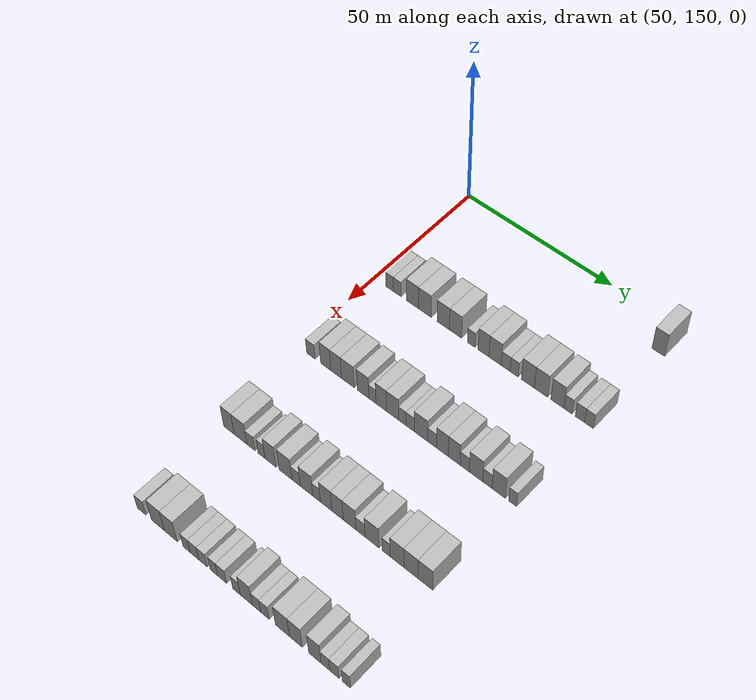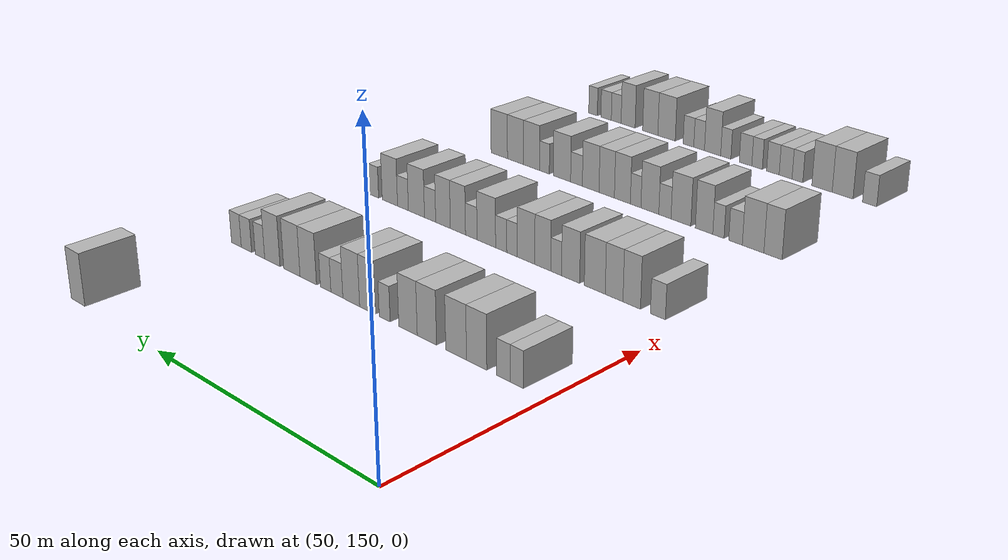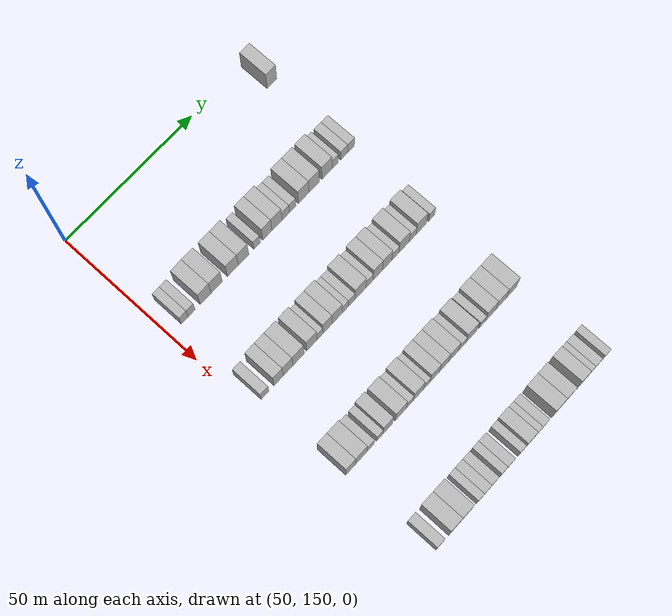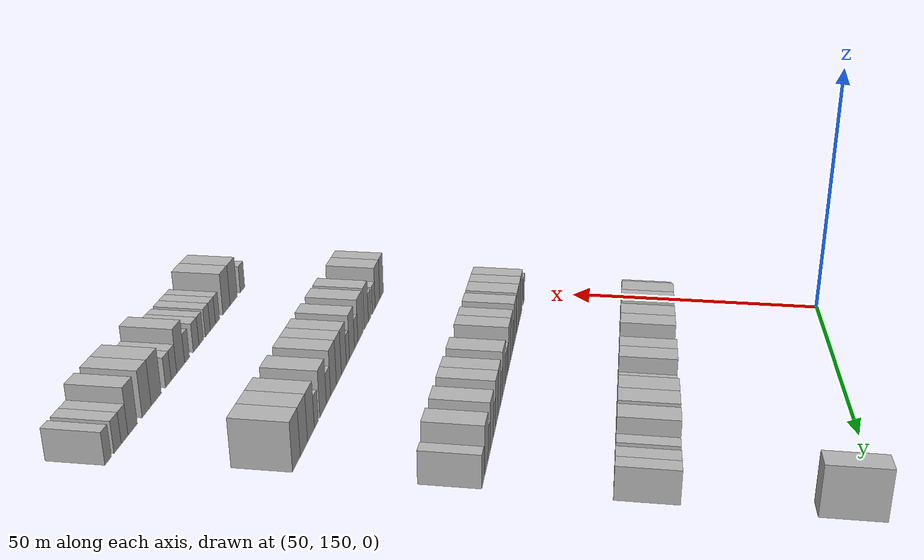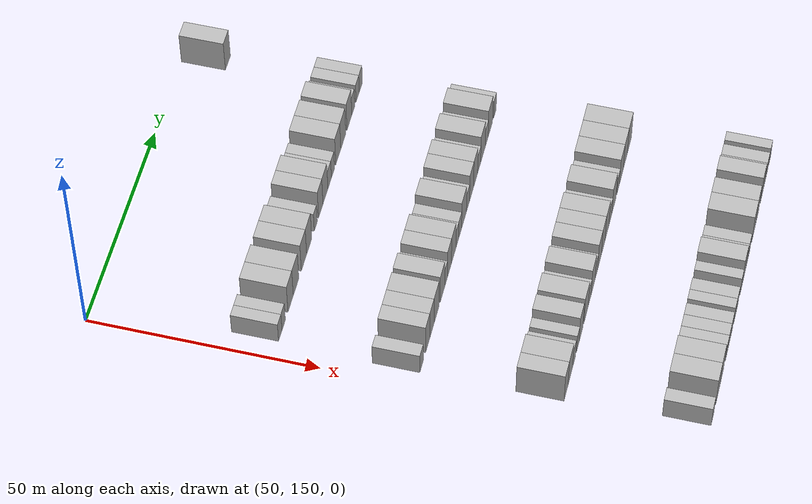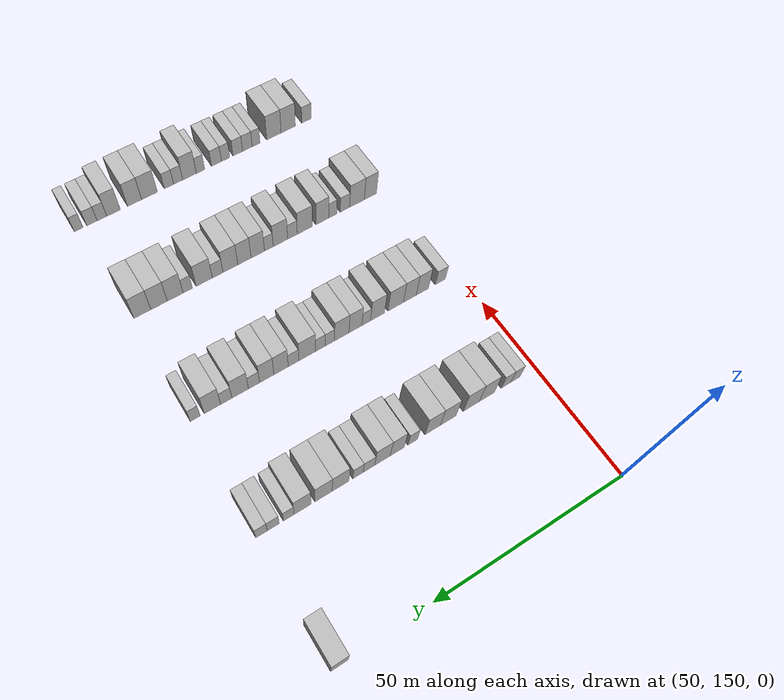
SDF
<sdf version="1.6">
 <world name="default">
  <model name="building_400">
   <static>1</static>
   <pose>55.0000 222.2956 0 0.000000 0.000000 0.000000</pose>
   <link name="link">
    <pose>0 0 4.50 0 0 0</pose>
    <collision name="collision"><geometry><box><size>10.0000 4.0230 9.0000</size></box></geometry></collision>
    <visual name="visual">
     <cast_shadows>0</cast_shadows>
     <geometry><box><size>10.0000 4.0230 9.0000</size></box></geometry>
     <material>
      <script>
       <uri>model://HANNAS_wall/materials/scripts</uri>
       <uri>model://HANNAS_wall/materials/textures</uri>
       <name>vrc/HANNAS_wall</name>
      </script>
     </material>
    </visual>
   </link>
  </model>
  <model name="building_618">
   <static>1</static>
   <pose>85.0000 155.6986 0 0.000000 0.000000 0.000000</pose>
   <link name="link">
    <pose>0 0 3.00 0 0 0</pose>
    <collision name="collision"><geometry><box><size>10.0000 2.6749 6.0000</size></box></geometry></collision>
    <visual name="visual">
     <cast_shadows>0</cast_shadows>
     <geometry><box><size>10.0000 2.6749 6.0000</size></box></geometry>
     <material>
      <script>
       <uri>model://HANNAS_wall/materials/scripts</uri>
       <uri>model://HANNAS_wall/materials/textures</uri>
       <name>vrc/HANNAS_wall</name>
      </script>
     </material>
    </visual>
   </link>
  </model>
  <model name="building_619">
   <static>1</static>
   <pose>85.0000 158.3963 0 0.000000 0.000000 0.000000</pose>
   <link name="link">
    <pose>0 0 3.00 0 0 0</pose>
    <collision name="collision"><geometry><box><size>10.0000 2.7205 6.0000</size></box></geometry></collision>
    <visual name="visual">
     <cast_shadows>0</cast_shadows>
     <geometry><box><size>10.0000 2.7205 6.0000</size></box></geometry>
     <material>
      <script>
       <uri>model://HANNAS_wall/materials/scripts</uri>
       <uri>model://HANNAS_wall/materials/textures</uri>
       <name>vrc/HANNAS_wall</name>
      </script>
     </material>
    </visual>
   </link>
  </model>
  <model name="building_620">
   <static>1</static>
   <pose>85.0000 163.8705 0 0.000000 0.000000 0.000000</pose>
   <link name="link">
    <pose>0 0 4.50 0 0 0</pose>
    <collision name="collision"><geometry><box><size>10.0000 4.2278 9.0000</size></box></geometry></collision>
    <visual name="visual">
     <cast_shadows>0</cast_shadows>
     <geometry><box><size>10.0000 4.2278 9.0000</size></box></geometry>
     <material>
      <script>
       <uri>model://HANNAS_wall/materials/scripts</uri>
       <uri>model://HANNAS_wall/materials/textures</uri>
       <name>vrc/HANNAS_wall</name>
      </script>
     </material>
    </visual>
   </link>
  </model>
  <model name="building_621">
   <static>1</static>
   <pose>85.0000 168.2015 0 0.000000 0.000000 0.000000</pose>
   <link name="link">
    <pose>0 0 4.50 0 0 0</pose>
    <collision name="collision"><geometry><box><size>10.0000 4.4344 9.0000</size></box></geometry></collision>
    <visual name="visual">
     <cast_shadows>0</cast_shadows>
     <geometry><box><size>10.0000 4.4344 9.0000</size></box></geometry>
     <material>
      <script>
       <uri>model://HANNAS_wall/materials/scripts</uri>
       <uri>model://HANNAS_wall/materials/textures</uri>
       <name>vrc/HANNAS_wall</name>
      </script>
     </material>
    </visual>
   </link>
  </model>
  <model name="building_622">
   <static>1</static>
   <pose>85.0000 174.5617 0 0.000000 0.000000 0.000000</pose>
   <link name="link">
    <pose>0 0 4.50 0 0 0</pose>
    <collision name="collision"><geometry><box><size>10.0000 4.2861 9.0000</size></box></geometry></collision>
    <visual name="visual">
     <cast_shadows>0</cast_shadows>
     <geometry><box><size>10.0000 4.2861 9.0000</size></box></geometry>
     <material>
      <script>
       <uri>model://HANNAS_wall/materials/scripts</uri>
       <uri>model://HANNAS_wall/materials/textures</uri>
       <name>vrc/HANNAS_wall</name>
      </script>
     </material>
    </visual>
   </link>
  </model>
  <model name="building_623">
   <static>1</static>
   <pose>85.0000 178.7982 0 0.000000 0.000000 0.000000</pose>
   <link name="link">
    <pose>0 0 4.50 0 0 0</pose>
    <collision name="collision"><geometry><box><size>10.0000 4.1868 9.0000</size></box></geometry></collision>
    <visual name="visual">
     <cast_shadows>0</cast_shadows>
     <geometry><box><size>10.0000 4.1868 9.0000</size></box></geometry>
     <material>
      <script>
       <uri>model://HANNAS_wall/materials/scripts</uri>
       <uri>model://HANNAS_wall/materials/textures</uri>
       <name>vrc/HANNAS_wall</name>
      </script>
     </material>
    </visual>
   </link>
  </model>
  <model name="building_624">
   <static>1</static>
   <pose>85.0000 184.1627 0 0.000000 0.000000 0.000000</pose>
   <link name="link">
    <pose>0 0 3.00 0 0 0</pose>
    <collision name="collision"><geometry><box><size>10.0000 2.5423 6.0000</size></box></geometry></collision>
    <visual name="visual">
     <cast_shadows>0</cast_shadows>
     <geometry><box><size>10.0000 2.5423 6.0000</size></box></geometry>
     <material>
      <script>
       <uri>model://HANNAS_wall/materials/scripts</uri>
       <uri>model://HANNAS_wall/materials/textures</uri>
       <name>vrc/HANNAS_wall</name>
      </script>
     </material>
    </visual>
   </link>
  </model>
  <model name="building_625">
   <static>1</static>
   <pose>85.0000 188.2737 0 0.000000 0.000000 0.000000</pose>
   <link name="link">
    <pose>0 0 4.50 0 0 0</pose>
    <collision name="collision"><geometry><box><size>10.0000 3.6796 9.0000</size></box></geometry></collision>
    <visual name="visual">
     <cast_shadows>0</cast_shadows>
     <geometry><box><size>10.0000 3.6796 9.0000</size></box></geometry>
     <material>
      <script>
       <uri>model://HANNAS_wall/materials/scripts</uri>
       <uri>model://HANNAS_wall/materials/textures</uri>
       <name>vrc/HANNAS_wall</name>
      </script>
     </material>
    </visual>
   </link>
  </model>
  <model name="building_626">
   <static>1</static>
   <pose>85.0000 192.1626 0 0.000000 0.000000 0.000000</pose>
   <link name="link">
    <pose>0 0 4.50 0 0 0</pose>
    <collision name="collision"><geometry><box><size>10.0000 4.0982 9.0000</size></box></geometry></collision>
    <visual name="visual">
     <cast_shadows>0</cast_shadows>
     <geometry><box><size>10.0000 4.0982 9.0000</size></box></geometry>
     <material>
      <script>
       <uri>model://HANNAS_wall/materials/scripts</uri>
       <uri>model://HANNAS_wall/materials/textures</uri>
       <name>vrc/HANNAS_wall</name>
      </script>
     </material>
    </visual>
   </link>
  </model>
  <model name="building_627">
   <static>1</static>
   <pose>85.0000 195.6975 0 0.000000 0.000000 0.000000</pose>
   <link name="link">
    <pose>0 0 3.00 0 0 0</pose>
    <collision name="collision"><geometry><box><size>10.0000 2.9717 6.0000</size></box></geometry></collision>
    <visual name="visual">
     <cast_shadows>0</cast_shadows>
     <geometry><box><size>10.0000 2.9717 6.0000</size></box></geometry>
     <material>
      <script>
       <uri>model://HANNAS_wall/materials/scripts</uri>
       <uri>model://HANNAS_wall/materials/textures</uri>
       <name>vrc/HANNAS_wall</name>
      </script>
     </material>
    </visual>
   </link>
  </model>
  <model name="building_628">
   <static>1</static>
   <pose>85.0000 198.5113 0 0.000000 0.000000 0.000000</pose>
   <link name="link">
    <pose>0 0 3.00 0 0 0</pose>
    <collision name="collision"><geometry><box><size>10.0000 2.6558 6.0000</size></box></geometry></collision>
    <visual name="visual">
     <cast_shadows>0</cast_shadows>
     <geometry><box><size>10.0000 2.6558 6.0000</size></box></geometry>
     <material>
      <script>
       <uri>model://HANNAS_wall/materials/scripts</uri>
       <uri>model://HANNAS_wall/materials/textures</uri>
       <name>vrc/HANNAS_wall</name>
      </script>
     </material>
    </visual>
   </link>
  </model>
  <model name="building_629">
   <static>1</static>
   <pose>85.0000 202.9677 0 0.000000 0.000000 0.000000</pose>
   <link name="link">
    <pose>0 0 4.50 0 0 0</pose>
    <collision name="collision"><geometry><box><size>10.0000 4.2570 9.0000</size></box></geometry></collision>
    <visual name="visual">
     <cast_shadows>0</cast_shadows>
     <geometry><box><size>10.0000 4.2570 9.0000</size></box></geometry>
     <material>
      <script>
       <uri>model://HANNAS_wall/materials/scripts</uri>
       <uri>model://HANNAS_wall/materials/textures</uri>
       <name>vrc/HANNAS_wall</name>
      </script>
     </material>
    </visual>
   </link>
  </model>
  <model name="building_630">
   <static>1</static>
   <pose>85.0000 207.2489 0 0.000000 0.000000 0.000000</pose>
   <link name="link">
    <pose>0 0 4.50 0 0 0</pose>
    <collision name="collision"><geometry><box><size>10.0000 4.3053 9.0000</size></box></geometry></collision>
    <visual name="visual">
     <cast_shadows>0</cast_shadows>
     <geometry><box><size>10.0000 4.3053 9.0000</size></box></geometry>
     <material>
      <script>
       <uri>model://HANNAS_wall/materials/scripts</uri>
       <uri>model://HANNAS_wall/materials/textures</uri>
       <name>vrc/HANNAS_wall</name>
      </script>
     </material>
    </visual>
   </link>
  </model>
  <model name="building_631">
   <static>1</static>
   <pose>85.0000 212.4844 0 0.000000 0.000000 0.000000</pose>
   <link name="link">
    <pose>0 0 4.50 0 0 0</pose>
    <collision name="collision"><geometry><box><size>10.0000 4.1656 9.0000</size></box></geometry></collision>
    <visual name="visual">
     <cast_shadows>0</cast_shadows>
     <geometry><box><size>10.0000 4.1656 9.0000</size></box></geometry>
     <material>
      <script>
       <uri>model://HANNAS_wall/materials/scripts</uri>
       <uri>model://HANNAS_wall/materials/textures</uri>
       <name>vrc/HANNAS_wall</name>
      </script>
     </material>
    </visual>
   </link>
  </model>
  <model name="building_632">
   <static>1</static>
   <pose>85.0000 215.8729 0 0.000000 0.000000 0.000000</pose>
   <link name="link">
    <pose>0 0 3.00 0 0 0</pose>
    <collision name="collision"><geometry><box><size>10.0000 2.6115 6.0000</size></box></geometry></collision>
    <visual name="visual">
     <cast_shadows>0</cast_shadows>
     <geometry><box><size>10.0000 2.6115 6.0000</size></box></geometry>
     <material>
      <script>
       <uri>model://HANNAS_wall/materials/scripts</uri>
       <uri>model://HANNAS_wall/materials/textures</uri>
       <name>vrc/HANNAS_wall</name>
      </script>
     </material>
    </visual>
   </link>
  </model>
  <model name="building_633">
   <static>1</static>
   <pose>85.0000 219.6330 0 0.000000 0.000000 0.000000</pose>
   <link name="link">
    <pose>0 0 3.00 0 0 0</pose>
    <collision name="collision"><geometry><box><size>10.0000 2.9088 6.0000</size></box></geometry></collision>
    <visual name="visual">
     <cast_shadows>0</cast_shadows>
     <geometry><box><size>10.0000 2.9088 6.0000</size></box></geometry>
     <material>
      <script>
       <uri>model://HANNAS_wall/materials/scripts</uri>
       <uri>model://HANNAS_wall/materials/textures</uri>
       <name>vrc/HANNAS_wall</name>
      </script>
     </material>
    </visual>
   </link>
  </model>
  <model name="building_634">
   <static>1</static>
   <pose>85.0000 222.4779 0 0.000000 0.000000 0.000000</pose>
   <link name="link">
    <pose>0 0 3.00 0 0 0</pose>
    <collision name="collision"><geometry><box><size>10.0000 2.7809 6.0000</size></box></geometry></collision>
    <visual name="visual">
     <cast_shadows>0</cast_shadows>
     <geometry><box><size>10.0000 2.7809 6.0000</size></box></geometry>
     <material>
      <script>
       <uri>model://HANNAS_wall/materials/scripts</uri>
       <uri>model://HANNAS_wall/materials/textures</uri>
       <name>vrc/HANNAS_wall</name>
      </script>
     </material>
    </visual>
   </link>
  </model>
  <model name="building_844">
   <static>1</static>
   <pose>115.0000 155.2185 0 0.000000 0.000000 0.000000</pose>
   <link name="link">
    <pose>0 0 3.00 0 0 0</pose>
    <collision name="collision"><geometry><box><size>10.0000 2.9948 6.0000</size></box></geometry></collision>
    <visual name="visual">
     <cast_shadows>0</cast_shadows>
     <geometry><box><size>10.0000 2.9948 6.0000</size></box></geometry>
     <material>
      <script>
       <uri>model://HANNAS_wall/materials/scripts</uri>
       <uri>model://HANNAS_wall/materials/textures</uri>
       <name>vrc/HANNAS_wall</name>
      </script>
     </material>
    </visual>
   </link>
  </model>
  <model name="building_845">
   <static>1</static>
   <pose>115.0000 160.5203 0 0.000000 0.000000 0.000000</pose>
   <link name="link">
    <pose>0 0 4.50 0 0 0</pose>
    <collision name="collision"><geometry><box><size>10.0000 3.6087 9.0000</size></box></geometry></collision>
    <visual name="visual">
     <cast_shadows>0</cast_shadows>
     <geometry><box><size>10.0000 3.6087 9.0000</size></box></geometry>
     <material>
      <script>
       <uri>model://HANNAS_wall/materials/scripts</uri>
       <uri>model://HANNAS_wall/materials/textures</uri>
       <name>vrc/HANNAS_wall</name>
      </script>
     </material>
    </visual>
   </link>
  </model>
  <model name="building_846">
   <static>1</static>
   <pose>115.0000 164.1859 0 0.000000 0.000000 0.000000</pose>
   <link name="link">
    <pose>0 0 4.50 0 0 0</pose>
    <collision name="collision"><geometry><box><size>10.0000 3.7227 9.0000</size></box></geometry></collision>
    <visual name="visual">
     <cast_shadows>0</cast_shadows>
     <geometry><box><size>10.0000 3.7227 9.0000</size></box></geometry>
     <material>
      <script>
       <uri>model://HANNAS_wall/materials/scripts</uri>
       <uri>model://HANNAS_wall/materials/textures</uri>
       <name>vrc/HANNAS_wall</name>
      </script>
     </material>
    </visual>
   </link>
  </model>
  <model name="building_847">
   <static>1</static>
   <pose>115.0000 168.2815 0 0.000000 0.000000 0.000000</pose>
   <link name="link">
    <pose>0 0 4.50 0 0 0</pose>
    <collision name="collision"><geometry><box><size>10.0000 4.4685 9.0000</size></box></geometry></collision>
    <visual name="visual">
     <cast_shadows>0</cast_shadows>
     <geometry><box><size>10.0000 4.4685 9.0000</size></box></geometry>
     <material>
      <script>
       <uri>model://HANNAS_wall/materials/scripts</uri>
       <uri>model://HANNAS_wall/materials/textures</uri>
       <name>vrc/HANNAS_wall</name>
      </script>
     </material>
    </visual>
   </link>
  </model>
  <model name="building_848">
   <static>1</static>
   <pose>115.0000 173.5145 0 0.000000 0.000000 0.000000</pose>
   <link name="link">
    <pose>0 0 4.50 0 0 0</pose>
    <collision name="collision"><geometry><box><size>10.0000 3.9974 9.0000</size></box></geometry></collision>
    <visual name="visual">
     <cast_shadows>0</cast_shadows>
     <geometry><box><size>10.0000 3.9974 9.0000</size></box></geometry>
     <material>
      <script>
       <uri>model://HANNAS_wall/materials/scripts</uri>
       <uri>model://HANNAS_wall/materials/textures</uri>
       <name>vrc/HANNAS_wall</name>
      </script>
     </material>
    </visual>
   </link>
  </model>
  <model name="building_849">
   <static>1</static>
   <pose>115.0000 176.7215 0 0.000000 0.000000 0.000000</pose>
   <link name="link">
    <pose>0 0 3.00 0 0 0</pose>
    <collision name="collision"><geometry><box><size>10.0000 2.4165 6.0000</size></box></geometry></collision>
    <visual name="visual">
     <cast_shadows>0</cast_shadows>
     <geometry><box><size>10.0000 2.4165 6.0000</size></box></geometry>
     <material>
      <script>
       <uri>model://HANNAS_wall/materials/scripts</uri>
       <uri>model://HANNAS_wall/materials/textures</uri>
       <name>vrc/HANNAS_wall</name>
      </script>
     </material>
    </visual>
   </link>
  </model>
  <model name="building_850">
   <static>1</static>
   <pose>115.0000 179.7391 0 0.000000 0.000000 0.000000</pose>
   <link name="link">
    <pose>0 0 4.50 0 0 0</pose>
    <collision name="collision"><geometry><box><size>10.0000 3.6188 9.0000</size></box></geometry></collision>
    <visual name="visual">
     <cast_shadows>0</cast_shadows>
     <geometry><box><size>10.0000 3.6188 9.0000</size></box></geometry>
     <material>
      <script>
       <uri>model://HANNAS_wall/materials/scripts</uri>
       <uri>model://HANNAS_wall/materials/textures</uri>
       <name>vrc/HANNAS_wall</name>
      </script>
     </material>
    </visual>
   </link>
  </model>
  <model name="building_851">
   <static>1</static>
   <pose>115.0000 183.5796 0 0.000000 0.000000 0.000000</pose>
   <link name="link">
    <pose>0 0 4.50 0 0 0</pose>
    <collision name="collision"><geometry><box><size>10.0000 4.0622 9.0000</size></box></geometry></collision>
    <visual name="visual">
     <cast_shadows>0</cast_shadows>
     <geometry><box><size>10.0000 4.0622 9.0000</size></box></geometry>
     <material>
      <script>
       <uri>model://HANNAS_wall/materials/scripts</uri>
       <uri>model://HANNAS_wall/materials/textures</uri>
       <name>vrc/HANNAS_wall</name>
      </script>
     </material>
    </visual>
   </link>
  </model>
  <model name="building_852">
   <static>1</static>
   <pose>115.0000 186.8452 0 0.000000 0.000000 0.000000</pose>
   <link name="link">
    <pose>0 0 3.00 0 0 0</pose>
    <collision name="collision"><geometry><box><size>10.0000 2.4689 6.0000</size></box></geometry></collision>
    <visual name="visual">
     <cast_shadows>0</cast_shadows>
     <geometry><box><size>10.0000 2.4689 6.0000</size></box></geometry>
     <material>
      <script>
       <uri>model://HANNAS_wall/materials/scripts</uri>
       <uri>model://HANNAS_wall/materials/textures</uri>
       <name>vrc/HANNAS_wall</name>
      </script>
     </material>
    </visual>
   </link>
  </model>
  <model name="building_853">
   <static>1</static>
   <pose>115.0000 189.4153 0 0.000000 0.000000 0.000000</pose>
   <link name="link">
    <pose>0 0 3.00 0 0 0</pose>
    <collision name="collision"><geometry><box><size>10.0000 2.6712 6.0000</size></box></geometry></collision>
    <visual name="visual">
     <cast_shadows>0</cast_shadows>
     <geometry><box><size>10.0000 2.6712 6.0000</size></box></geometry>
     <material>
      <script>
       <uri>model://HANNAS_wall/materials/scripts</uri>
       <uri>model://HANNAS_wall/materials/textures</uri>
       <name>vrc/HANNAS_wall</name>
      </script>
     </material>
    </visual>
   </link>
  </model>
  <model name="building_854">
   <static>1</static>
   <pose>115.0000 192.9995 0 0.000000 0.000000 0.000000</pose>
   <link name="link">
    <pose>0 0 4.50 0 0 0</pose>
    <collision name="collision"><geometry><box><size>10.0000 4.4973 9.0000</size></box></geometry></collision>
    <visual name="visual">
     <cast_shadows>0</cast_shadows>
     <geometry><box><size>10.0000 4.4973 9.0000</size></box></geometry>
     <material>
      <script>
       <uri>model://HANNAS_wall/materials/scripts</uri>
       <uri>model://HANNAS_wall/materials/textures</uri>
       <name>vrc/HANNAS_wall</name>
      </script>
     </material>
    </visual>
   </link>
  </model>
  <model name="building_855">
   <static>1</static>
   <pose>115.0000 196.6840 0 0.000000 0.000000 0.000000</pose>
   <link name="link">
    <pose>0 0 3.00 0 0 0</pose>
    <collision name="collision"><geometry><box><size>10.0000 2.8716 6.0000</size></box></geometry></collision>
    <visual name="visual">
     <cast_shadows>0</cast_shadows>
     <geometry><box><size>10.0000 2.8716 6.0000</size></box></geometry>
     <material>
      <script>
       <uri>model://HANNAS_wall/materials/scripts</uri>
       <uri>model://HANNAS_wall/materials/textures</uri>
       <name>vrc/HANNAS_wall</name>
      </script>
     </material>
    </visual>
   </link>
  </model>
  <model name="building_856">
   <static>1</static>
   <pose>115.0000 200.0212 0 0.000000 0.000000 0.000000</pose>
   <link name="link">
    <pose>0 0 4.50 0 0 0</pose>
    <collision name="collision"><geometry><box><size>10.0000 3.8029 9.0000</size></box></geometry></collision>
    <visual name="visual">
     <cast_shadows>0</cast_shadows>
     <geometry><box><size>10.0000 3.8029 9.0000</size></box></geometry>
     <material>
      <script>
       <uri>model://HANNAS_wall/materials/scripts</uri>
       <uri>model://HANNAS_wall/materials/textures</uri>
       <name>vrc/HANNAS_wall</name>
      </script>
     </material>
    </visual>
   </link>
  </model>
  <model name="building_857">
   <static>1</static>
   <pose>115.0000 203.8051 0 0.000000 0.000000 0.000000</pose>
   <link name="link">
    <pose>0 0 4.50 0 0 0</pose>
    <collision name="collision"><geometry><box><size>10.0000 3.7650 9.0000</size></box></geometry></collision>
    <visual name="visual">
     <cast_shadows>0</cast_shadows>
     <geometry><box><size>10.0000 3.7650 9.0000</size></box></geometry>
     <material>
      <script>
       <uri>model://HANNAS_wall/materials/scripts</uri>
       <uri>model://HANNAS_wall/materials/textures</uri>
       <name>vrc/HANNAS_wall</name>
      </script>
     </material>
    </visual>
   </link>
  </model>
  <model name="building_858">
   <static>1</static>
   <pose>115.0000 207.1430 0 0.000000 0.000000 0.000000</pose>
   <link name="link">
    <pose>0 0 3.00 0 0 0</pose>
    <collision name="collision"><geometry><box><size>10.0000 2.9108 6.0000</size></box></geometry></collision>
    <visual name="visual">
     <cast_shadows>0</cast_shadows>
     <geometry><box><size>10.0000 2.9108 6.0000</size></box></geometry>
     <material>
      <script>
       <uri>model://HANNAS_wall/materials/scripts</uri>
       <uri>model://HANNAS_wall/materials/textures</uri>
       <name>vrc/HANNAS_wall</name>
      </script>
     </material>
    </visual>
   </link>
  </model>
  <model name="building_859">
   <static>1</static>
   <pose>115.0000 210.7343 0 0.000000 0.000000 0.000000</pose>
   <link name="link">
    <pose>0 0 4.50 0 0 0</pose>
    <collision name="collision"><geometry><box><size>10.0000 4.2718 9.0000</size></box></geometry></collision>
    <visual name="visual">
     <cast_shadows>0</cast_shadows>
     <geometry><box><size>10.0000 4.2718 9.0000</size></box></geometry>
     <material>
      <script>
       <uri>model://HANNAS_wall/materials/scripts</uri>
       <uri>model://HANNAS_wall/materials/textures</uri>
       <name>vrc/HANNAS_wall</name>
      </script>
     </material>
    </visual>
   </link>
  </model>
  <model name="building_860">
   <static>1</static>
   <pose>115.0000 214.3268 0 0.000000 0.000000 0.000000</pose>
   <link name="link">
    <pose>0 0 3.00 0 0 0</pose>
    <collision name="collision"><geometry><box><size>10.0000 2.9131 6.0000</size></box></geometry></collision>
    <visual name="visual">
     <cast_shadows>0</cast_shadows>
     <geometry><box><size>10.0000 2.9131 6.0000</size></box></geometry>
     <material>
      <script>
       <uri>model://HANNAS_wall/materials/scripts</uri>
       <uri>model://HANNAS_wall/materials/textures</uri>
       <name>vrc/HANNAS_wall</name>
      </script>
     </material>
    </visual>
   </link>
  </model>
  <model name="building_861">
   <static>1</static>
   <pose>115.0000 217.8790 0 0.000000 0.000000 0.000000</pose>
   <link name="link">
    <pose>0 0 4.50 0 0 0</pose>
    <collision name="collision"><geometry><box><size>10.0000 4.1913 9.0000</size></box></geometry></collision>
    <visual name="visual">
     <cast_shadows>0</cast_shadows>
     <geometry><box><size>10.0000 4.1913 9.0000</size></box></geometry>
     <material>
      <script>
       <uri>model://HANNAS_wall/materials/scripts</uri>
       <uri>model://HANNAS_wall/materials/textures</uri>
       <name>vrc/HANNAS_wall</name>
      </script>
     </material>
    </visual>
   </link>
  </model>
  <model name="building_862">
   <static>1</static>
   <pose>115.0000 222.2330 0 0.000000 0.000000 0.000000</pose>
   <link name="link">
    <pose>0 0 3.00 0 0 0</pose>
    <collision name="collision"><geometry><box><size>10.0000 2.5166 6.0000</size></box></geometry></collision>
    <visual name="visual">
     <cast_shadows>0</cast_shadows>
     <geometry><box><size>10.0000 2.5166 6.0000</size></box></geometry>
     <material>
      <script>
       <uri>model://HANNAS_wall/materials/scripts</uri>
       <uri>model://HANNAS_wall/materials/textures</uri>
       <name>vrc/HANNAS_wall</name>
      </script>
     </material>
    </visual>
   </link>
  </model>
  <model name="building_1076">
   <static>1</static>
   <pose>145.0000 155.7217 0 0.000000 0.000000 0.000000</pose>
   <link name="link">
    <pose>0 0 4.50 0 0 0</pose>
    <collision name="collision"><geometry><box><size>10.0000 3.7081 9.0000</size></box></geometry></collision>
    <visual name="visual">
     <cast_shadows>0</cast_shadows>
     <geometry><box><size>10.0000 3.7081 9.0000</size></box></geometry>
     <material>
      <script>
       <uri>model://HANNAS_wall/materials/scripts</uri>
       <uri>model://HANNAS_wall/materials/textures</uri>
       <name>vrc/HANNAS_wall</name>
      </script>
     </material>
    </visual>
   </link>
  </model>
  <model name="building_1077">
   <static>1</static>
   <pose>145.0000 159.8164 0 0.000000 0.000000 0.000000</pose>
   <link name="link">
    <pose>0 0 4.50 0 0 0</pose>
    <collision name="collision"><geometry><box><size>10.0000 4.4813 9.0000</size></box></geometry></collision>
    <visual name="visual">
     <cast_shadows>0</cast_shadows>
     <geometry><box><size>10.0000 4.4813 9.0000</size></box></geometry>
     <material>
      <script>
       <uri>model://HANNAS_wall/materials/scripts</uri>
       <uri>model://HANNAS_wall/materials/textures</uri>
       <name>vrc/HANNAS_wall</name>
      </script>
     </material>
    </visual>
   </link>
  </model>
  <model name="building_1078">
   <static>1</static>
   <pose>145.0000 163.4894 0 0.000000 0.000000 0.000000</pose>
   <link name="link">
    <pose>0 0 3.00 0 0 0</pose>
    <collision name="collision"><geometry><box><size>10.0000 2.8647 6.0000</size></box></geometry></collision>
    <visual name="visual">
     <cast_shadows>0</cast_shadows>
     <geometry><box><size>10.0000 2.8647 6.0000</size></box></geometry>
     <material>
      <script>
       <uri>model://HANNAS_wall/materials/scripts</uri>
       <uri>model://HANNAS_wall/materials/textures</uri>
       <name>vrc/HANNAS_wall</name>
      </script>
     </material>
    </visual>
   </link>
  </model>
  <model name="building_1079">
   <static>1</static>
   <pose>145.0000 167.1358 0 0.000000 0.000000 0.000000</pose>
   <link name="link">
    <pose>0 0 3.00 0 0 0</pose>
    <collision name="collision"><geometry><box><size>10.0000 2.4279 6.0000</size></box></geometry></collision>
    <visual name="visual">
     <cast_shadows>0</cast_shadows>
     <geometry><box><size>10.0000 2.4279 6.0000</size></box></geometry>
     <material>
      <script>
       <uri>model://HANNAS_wall/materials/scripts</uri>
       <uri>model://HANNAS_wall/materials/textures</uri>
       <name>vrc/HANNAS_wall</name>
      </script>
     </material>
    </visual>
   </link>
  </model>
  <model name="building_1080">
   <static>1</static>
   <pose>145.0000 170.2595 0 0.000000 0.000000 0.000000</pose>
   <link name="link">
    <pose>0 0 4.50 0 0 0</pose>
    <collision name="collision"><geometry><box><size>10.0000 3.8195 9.0000</size></box></geometry></collision>
    <visual name="visual">
     <cast_shadows>0</cast_shadows>
     <geometry><box><size>10.0000 3.8195 9.0000</size></box></geometry>
     <material>
      <script>
       <uri>model://HANNAS_wall/materials/scripts</uri>
       <uri>model://HANNAS_wall/materials/textures</uri>
       <name>vrc/HANNAS_wall</name>
      </script>
     </material>
    </visual>
   </link>
  </model>
  <model name="building_1081">
   <static>1</static>
   <pose>145.0000 175.3894 0 0.000000 0.000000 0.000000</pose>
   <link name="link">
    <pose>0 0 4.50 0 0 0</pose>
    <collision name="collision"><geometry><box><size>10.0000 4.4403 9.0000</size></box></geometry></collision>
    <visual name="visual">
     <cast_shadows>0</cast_shadows>
     <geometry><box><size>10.0000 4.4403 9.0000</size></box></geometry>
     <material>
      <script>
       <uri>model://HANNAS_wall/materials/scripts</uri>
       <uri>model://HANNAS_wall/materials/textures</uri>
       <name>vrc/HANNAS_wall</name>
      </script>
     </material>
    </visual>
   </link>
  </model>
  <model name="building_1082">
   <static>1</static>
   <pose>145.0000 179.0048 0 0.000000 0.000000 0.000000</pose>
   <link name="link">
    <pose>0 0 3.00 0 0 0</pose>
    <collision name="collision"><geometry><box><size>10.0000 2.7907 6.0000</size></box></geometry></collision>
    <visual name="visual">
     <cast_shadows>0</cast_shadows>
     <geometry><box><size>10.0000 2.7907 6.0000</size></box></geometry>
     <material>
      <script>
       <uri>model://HANNAS_wall/materials/scripts</uri>
       <uri>model://HANNAS_wall/materials/textures</uri>
       <name>vrc/HANNAS_wall</name>
      </script>
     </material>
    </visual>
   </link>
  </model>
  <model name="building_1083">
   <static>1</static>
   <pose>145.0000 182.4770 0 0.000000 0.000000 0.000000</pose>
   <link name="link">
    <pose>0 0 4.50 0 0 0</pose>
    <collision name="collision"><geometry><box><size>10.0000 4.1538 9.0000</size></box></geometry></collision>
    <visual name="visual">
     <cast_shadows>0</cast_shadows>
     <geometry><box><size>10.0000 4.1538 9.0000</size></box></geometry>
     <material>
      <script>
       <uri>model://HANNAS_wall/materials/scripts</uri>
       <uri>model://HANNAS_wall/materials/textures</uri>
       <name>vrc/HANNAS_wall</name>
      </script>
     </material>
    </visual>
   </link>
  </model>
  <model name="building_1084">
   <static>1</static>
   <pose>145.0000 185.7970 0 0.000000 0.000000 0.000000</pose>
   <link name="link">
    <pose>0 0 3.00 0 0 0</pose>
    <collision name="collision"><geometry><box><size>10.0000 2.4860 6.0000</size></box></geometry></collision>
    <visual name="visual">
     <cast_shadows>0</cast_shadows>
     <geometry><box><size>10.0000 2.4860 6.0000</size></box></geometry>
     <material>
      <script>
       <uri>model://HANNAS_wall/materials/scripts</uri>
       <uri>model://HANNAS_wall/materials/textures</uri>
       <name>vrc/HANNAS_wall</name>
      </script>
     </material>
    </visual>
   </link>
  </model>
  <model name="building_1085">
   <static>1</static>
   <pose>145.0000 188.9484 0 0.000000 0.000000 0.000000</pose>
   <link name="link">
    <pose>0 0 4.50 0 0 0</pose>
    <collision name="collision"><geometry><box><size>10.0000 3.8168 9.0000</size></box></geometry></collision>
    <visual name="visual">
     <cast_shadows>0</cast_shadows>
     <geometry><box><size>10.0000 3.8168 9.0000</size></box></geometry>
     <material>
      <script>
       <uri>model://HANNAS_wall/materials/scripts</uri>
       <uri>model://HANNAS_wall/materials/textures</uri>
       <name>vrc/HANNAS_wall</name>
      </script>
     </material>
    </visual>
   </link>
  </model>
  <model name="building_1086">
   <static>1</static>
   <pose>145.0000 192.7277 0 0.000000 0.000000 0.000000</pose>
   <link name="link">
    <pose>0 0 4.50 0 0 0</pose>
    <collision name="collision"><geometry><box><size>10.0000 3.7420 9.0000</size></box></geometry></collision>
    <visual name="visual">
     <cast_shadows>0</cast_shadows>
     <geometry><box><size>10.0000 3.7420 9.0000</size></box></geometry>
     <material>
      <script>
       <uri>model://HANNAS_wall/materials/scripts</uri>
       <uri>model://HANNAS_wall/materials/textures</uri>
       <name>vrc/HANNAS_wall</name>
      </script>
     </material>
    </visual>
   </link>
  </model>
  <model name="building_1087">
   <static>1</static>
   <pose>145.0000 196.6620 0 0.000000 0.000000 0.000000</pose>
   <link name="link">
    <pose>0 0 4.50 0 0 0</pose>
    <collision name="collision"><geometry><box><size>10.0000 4.1267 9.0000</size></box></geometry></collision>
    <visual name="visual">
     <cast_shadows>0</cast_shadows>
     <geometry><box><size>10.0000 4.1267 9.0000</size></box></geometry>
     <material>
      <script>
       <uri>model://HANNAS_wall/materials/scripts</uri>
       <uri>model://HANNAS_wall/materials/textures</uri>
       <name>vrc/HANNAS_wall</name>
      </script>
     </material>
    </visual>
   </link>
  </model>
  <model name="building_1088">
   <static>1</static>
   <pose>145.0000 200.2039 0 0.000000 0.000000 0.000000</pose>
   <link name="link">
    <pose>0 0 3.00 0 0 0</pose>
    <collision name="collision"><geometry><box><size>10.0000 2.9570 6.0000</size></box></geometry></collision>
    <visual name="visual">
     <cast_shadows>0</cast_shadows>
     <geometry><box><size>10.0000 2.9570 6.0000</size></box></geometry>
     <material>
      <script>
       <uri>model://HANNAS_wall/materials/scripts</uri>
       <uri>model://HANNAS_wall/materials/textures</uri>
       <name>vrc/HANNAS_wall</name>
      </script>
     </material>
    </visual>
   </link>
  </model>
  <model name="building_1089">
   <static>1</static>
   <pose>145.0000 203.9115 0 0.000000 0.000000 0.000000</pose>
   <link name="link">
    <pose>0 0 4.50 0 0 0</pose>
    <collision name="collision"><geometry><box><size>10.0000 4.4582 9.0000</size></box></geometry></collision>
    <visual name="visual">
     <cast_shadows>0</cast_shadows>
     <geometry><box><size>10.0000 4.4582 9.0000</size></box></geometry>
     <material>
      <script>
       <uri>model://HANNAS_wall/materials/scripts</uri>
       <uri>model://HANNAS_wall/materials/textures</uri>
       <name>vrc/HANNAS_wall</name>
      </script>
     </material>
    </visual>
   </link>
  </model>
  <model name="building_1090">
   <static>1</static>
   <pose>145.0000 208.3950 0 0.000000 0.000000 0.000000</pose>
   <link name="link">
    <pose>0 0 3.00 0 0 0</pose>
    <collision name="collision"><geometry><box><size>10.0000 2.5088 6.0000</size></box></geometry></collision>
    <visual name="visual">
     <cast_shadows>0</cast_shadows>
     <geometry><box><size>10.0000 2.5088 6.0000</size></box></geometry>
     <material>
      <script>
       <uri>model://HANNAS_wall/materials/scripts</uri>
       <uri>model://HANNAS_wall/materials/textures</uri>
       <name>vrc/HANNAS_wall</name>
      </script>
     </material>
    </visual>
   </link>
  </model>
  <model name="building_1091">
   <static>1</static>
   <pose>145.0000 211.7893 0 0.000000 0.000000 0.000000</pose>
   <link name="link">
    <pose>0 0 4.50 0 0 0</pose>
    <collision name="collision"><geometry><box><size>10.0000 4.2798 9.0000</size></box></geometry></collision>
    <visual name="visual">
     <cast_shadows>0</cast_shadows>
     <geometry><box><size>10.0000 4.2798 9.0000</size></box></geometry>
     <material>
      <script>
       <uri>model://HANNAS_wall/materials/scripts</uri>
       <uri>model://HANNAS_wall/materials/textures</uri>
       <name>vrc/HANNAS_wall</name>
      </script>
     </material>
    </visual>
   </link>
  </model>
  <model name="building_1092">
   <static>1</static>
   <pose>145.0000 216.1120 0 0.000000 0.000000 0.000000</pose>
   <link name="link">
    <pose>0 0 4.50 0 0 0</pose>
    <collision name="collision"><geometry><box><size>10.0000 4.3656 9.0000</size></box></geometry></collision>
    <visual name="visual">
     <cast_shadows>0</cast_shadows>
     <geometry><box><size>10.0000 4.3656 9.0000</size></box></geometry>
     <material>
      <script>
       <uri>model://HANNAS_wall/materials/scripts</uri>
       <uri>model://HANNAS_wall/materials/textures</uri>
       <name>vrc/HANNAS_wall</name>
      </script>
     </material>
    </visual>
   </link>
  </model>
  <model name="building_1093">
   <static>1</static>
   <pose>145.0000 220.5405 0 0.000000 0.000000 0.000000</pose>
   <link name="link">
    <pose>0 0 4.50 0 0 0</pose>
    <collision name="collision"><geometry><box><size>10.0000 4.4915 9.0000</size></box></geometry></collision>
    <visual name="visual">
     <cast_shadows>0</cast_shadows>
     <geometry><box><size>10.0000 4.4915 9.0000</size></box></geometry>
     <material>
      <script>
       <uri>model://HANNAS_wall/materials/scripts</uri>
       <uri>model://HANNAS_wall/materials/textures</uri>
       <name>vrc/HANNAS_wall</name>
      </script>
     </material>
    </visual>
   </link>
  </model>
  <model name="building_1310">
   <static>1</static>
   <pose>175.0000 156.6172 0 0.000000 0.000000 0.000000</pose>
   <link name="link">
    <pose>0 0 3.00 0 0 0</pose>
    <collision name="collision"><geometry><box><size>10.0000 2.9872 6.0000</size></box></geometry></collision>
    <visual name="visual">
     <cast_shadows>0</cast_shadows>
     <geometry><box><size>10.0000 2.9872 6.0000</size></box></geometry>
     <material>
      <script>
       <uri>model://HANNAS_wall/materials/scripts</uri>
       <uri>model://HANNAS_wall/materials/textures</uri>
       <name>vrc/HANNAS_wall</name>
      </script>
     </material>
    </visual>
   </link>
  </model>
  <model name="building_1311">
   <static>1</static>
   <pose>175.0000 162.3512 0 0.000000 0.000000 0.000000</pose>
   <link name="link">
    <pose>0 0 4.50 0 0 0</pose>
    <collision name="collision"><geometry><box><size>10.0000 4.4807 9.0000</size></box></geometry></collision>
    <visual name="visual">
     <cast_shadows>0</cast_shadows>
     <geometry><box><size>10.0000 4.4807 9.0000</size></box></geometry>
     <material>
      <script>
       <uri>model://HANNAS_wall/materials/scripts</uri>
       <uri>model://HANNAS_wall/materials/textures</uri>
       <name>vrc/HANNAS_wall</name>
      </script>
     </material>
    </visual>
   </link>
  </model>
  <model name="building_1312">
   <static>1</static>
   <pose>175.0000 166.8224 0 0.000000 0.000000 0.000000</pose>
   <link name="link">
    <pose>0 0 4.50 0 0 0</pose>
    <collision name="collision"><geometry><box><size>10.0000 4.4617 9.0000</size></box></geometry></collision>
    <visual name="visual">
     <cast_shadows>0</cast_shadows>
     <geometry><box><size>10.0000 4.4617 9.0000</size></box></geometry>
     <material>
      <script>
       <uri>model://HANNAS_wall/materials/scripts</uri>
       <uri>model://HANNAS_wall/materials/textures</uri>
       <name>vrc/HANNAS_wall</name>
      </script>
     </material>
    </visual>
   </link>
  </model>
  <model name="building_1313">
   <static>1</static>
   <pose>175.0000 172.2635 0 0.000000 0.000000 0.000000</pose>
   <link name="link">
    <pose>0 0 3.00 0 0 0</pose>
    <collision name="collision"><geometry><box><size>10.0000 2.4206 6.0000</size></box></geometry></collision>
    <visual name="visual">
     <cast_shadows>0</cast_shadows>
     <geometry><box><size>10.0000 2.4206 6.0000</size></box></geometry>
     <material>
      <script>
       <uri>model://HANNAS_wall/materials/scripts</uri>
       <uri>model://HANNAS_wall/materials/textures</uri>
       <name>vrc/HANNAS_wall</name>
      </script>
     </material>
    </visual>
   </link>
  </model>
  <model name="building_1314">
   <static>1</static>
   <pose>175.0000 174.9399 0 0.000000 0.000000 0.000000</pose>
   <link name="link">
    <pose>0 0 3.00 0 0 0</pose>
    <collision name="collision"><geometry><box><size>10.0000 2.9321 6.0000</size></box></geometry></collision>
    <visual name="visual">
     <cast_shadows>0</cast_shadows>
     <geometry><box><size>10.0000 2.9321 6.0000</size></box></geometry>
     <material>
      <script>
       <uri>model://HANNAS_wall/materials/scripts</uri>
       <uri>model://HANNAS_wall/materials/textures</uri>
       <name>vrc/HANNAS_wall</name>
      </script>
     </material>
    </visual>
   </link>
  </model>
  <model name="building_1315">
   <static>1</static>
   <pose>175.0000 177.8449 0 0.000000 0.000000 0.000000</pose>
   <link name="link">
    <pose>0 0 3.00 0 0 0</pose>
    <collision name="collision"><geometry><box><size>10.0000 2.8779 6.0000</size></box></geometry></collision>
    <visual name="visual">
     <cast_shadows>0</cast_shadows>
     <geometry><box><size>10.0000 2.8779 6.0000</size></box></geometry>
     <material>
      <script>
       <uri>model://HANNAS_wall/materials/scripts</uri>
       <uri>model://HANNAS_wall/materials/textures</uri>
       <name>vrc/HANNAS_wall</name>
      </script>
     </material>
    </visual>
   </link>
  </model>
  <model name="building_1316">
   <static>1</static>
   <pose>175.0000 181.5203 0 0.000000 0.000000 0.000000</pose>
   <link name="link">
    <pose>0 0 3.00 0 0 0</pose>
    <collision name="collision"><geometry><box><size>10.0000 2.4731 6.0000</size></box></geometry></collision>
    <visual name="visual">
     <cast_shadows>0</cast_shadows>
     <geometry><box><size>10.0000 2.4731 6.0000</size></box></geometry>
     <material>
      <script>
       <uri>model://HANNAS_wall/materials/scripts</uri>
       <uri>model://HANNAS_wall/materials/textures</uri>
       <name>vrc/HANNAS_wall</name>
      </script>
     </material>
    </visual>
   </link>
  </model>
  <model name="building_1317">
   <static>1</static>
   <pose>175.0000 184.2434 0 0.000000 0.000000 0.000000</pose>
   <link name="link">
    <pose>0 0 3.00 0 0 0</pose>
    <collision name="collision"><geometry><box><size>10.0000 2.9730 6.0000</size></box></geometry></collision>
    <visual name="visual">
     <cast_shadows>0</cast_shadows>
     <geometry><box><size>10.0000 2.9730 6.0000</size></box></geometry>
     <material>
      <script>
       <uri>model://HANNAS_wall/materials/scripts</uri>
       <uri>model://HANNAS_wall/materials/textures</uri>
       <name>vrc/HANNAS_wall</name>
      </script>
     </material>
    </visual>
   </link>
  </model>
  <model name="building_1318">
   <static>1</static>
   <pose>175.0000 188.9657 0 0.000000 0.000000 0.000000</pose>
   <link name="link">
    <pose>0 0 3.00 0 0 0</pose>
    <collision name="collision"><geometry><box><size>10.0000 2.4717 6.0000</size></box></geometry></collision>
    <visual name="visual">
     <cast_shadows>0</cast_shadows>
     <geometry><box><size>10.0000 2.4717 6.0000</size></box></geometry>
     <material>
      <script>
       <uri>model://HANNAS_wall/materials/scripts</uri>
       <uri>model://HANNAS_wall/materials/textures</uri>
       <name>vrc/HANNAS_wall</name>
      </script>
     </material>
    </visual>
   </link>
  </model>
  <model name="building_1319">
   <static>1</static>
   <pose>175.0000 192.1882 0 0.000000 0.000000 0.000000</pose>
   <link name="link">
    <pose>0 0 4.50 0 0 0</pose>
    <collision name="collision"><geometry><box><size>10.0000 3.9733 9.0000</size></box></geometry></collision>
    <visual name="visual">
     <cast_shadows>0</cast_shadows>
     <geometry><box><size>10.0000 3.9733 9.0000</size></box></geometry>
     <material>
      <script>
       <uri>model://HANNAS_wall/materials/scripts</uri>
       <uri>model://HANNAS_wall/materials/textures</uri>
       <name>vrc/HANNAS_wall</name>
      </script>
     </material>
    </visual>
   </link>
  </model>
  <model name="building_1320">
   <static>1</static>
   <pose>175.0000 195.5091 0 0.000000 0.000000 0.000000</pose>
   <link name="link">
    <pose>0 0 3.00 0 0 0</pose>
    <collision name="collision"><geometry><box><size>10.0000 2.6685 6.0000</size></box></geometry></collision>
    <visual name="visual">
     <cast_shadows>0</cast_shadows>
     <geometry><box><size>10.0000 2.6685 6.0000</size></box></geometry>
     <material>
      <script>
       <uri>model://HANNAS_wall/materials/scripts</uri>
       <uri>model://HANNAS_wall/materials/textures</uri>
       <name>vrc/HANNAS_wall</name>
      </script>
     </material>
    </visual>
   </link>
  </model>
  <model name="building_1321">
   <static>1</static>
   <pose>175.0000 198.1850 0 0.000000 0.000000 0.000000</pose>
   <link name="link">
    <pose>0 0 3.00 0 0 0</pose>
    <collision name="collision"><geometry><box><size>10.0000 2.6833 6.0000</size></box></geometry></collision>
    <visual name="visual">
     <cast_shadows>0</cast_shadows>
     <geometry><box><size>10.0000 2.6833 6.0000</size></box></geometry>
     <material>
      <script>
       <uri>model://HANNAS_wall/materials/scripts</uri>
       <uri>model://HANNAS_wall/materials/textures</uri>
       <name>vrc/HANNAS_wall</name>
      </script>
     </material>
    </visual>
   </link>
  </model>
  <model name="building_1322">
   <static>1</static>
   <pose>175.0000 203.7743 0 0.000000 0.000000 0.000000</pose>
   <link name="link">
    <pose>0 0 4.50 0 0 0</pose>
    <collision name="collision"><geometry><box><size>10.0000 4.4953 9.0000</size></box></geometry></collision>
    <visual name="visual">
     <cast_shadows>0</cast_shadows>
     <geometry><box><size>10.0000 4.4953 9.0000</size></box></geometry>
     <material>
      <script>
       <uri>model://HANNAS_wall/materials/scripts</uri>
       <uri>model://HANNAS_wall/materials/textures</uri>
       <name>vrc/HANNAS_wall</name>
      </script>
     </material>
    </visual>
   </link>
  </model>
  <model name="building_1323">
   <static>1</static>
   <pose>175.0000 208.0114 0 0.000000 0.000000 0.000000</pose>
   <link name="link">
    <pose>0 0 4.50 0 0 0</pose>
    <collision name="collision"><geometry><box><size>10.0000 3.9789 9.0000</size></box></geometry></collision>
    <visual name="visual">
     <cast_shadows>0</cast_shadows>
     <geometry><box><size>10.0000 3.9789 9.0000</size></box></geometry>
     <material>
      <script>
       <uri>model://HANNAS_wall/materials/scripts</uri>
       <uri>model://HANNAS_wall/materials/textures</uri>
       <name>vrc/HANNAS_wall</name>
      </script>
     </material>
    </visual>
   </link>
  </model>
  <model name="building_1324">
   <static>1</static>
   <pose>175.0000 213.8950 0 0.000000 0.000000 0.000000</pose>
   <link name="link">
    <pose>0 0 4.50 0 0 0</pose>
    <collision name="collision"><geometry><box><size>10.0000 3.7882 9.0000</size></box></geometry></collision>
    <visual name="visual">
     <cast_shadows>0</cast_shadows>
     <geometry><box><size>10.0000 3.7882 9.0000</size></box></geometry>
     <material>
      <script>
       <uri>model://HANNAS_wall/materials/scripts</uri>
       <uri>model://HANNAS_wall/materials/textures</uri>
       <name>vrc/HANNAS_wall</name>
      </script>
     </material>
    </visual>
   </link>
  </model>
  <model name="building_1325">
   <static>1</static>
   <pose>175.0000 217.1130 0 0.000000 0.000000 0.000000</pose>
   <link name="link">
    <pose>0 0 3.00 0 0 0</pose>
    <collision name="collision"><geometry><box><size>10.0000 2.6477 6.0000</size></box></geometry></collision>
    <visual name="visual">
     <cast_shadows>0</cast_shadows>
     <geometry><box><size>10.0000 2.6477 6.0000</size></box></geometry>
     <material>
      <script>
       <uri>model://HANNAS_wall/materials/scripts</uri>
       <uri>model://HANNAS_wall/materials/textures</uri>
       <name>vrc/HANNAS_wall</name>
      </script>
     </material>
    </visual>
   </link>
  </model>
  <model name="building_1326">
   <static>1</static>
   <pose>175.0000 219.8685 0 0.000000 0.000000 0.000000</pose>
   <link name="link">
    <pose>0 0 3.00 0 0 0</pose>
    <collision name="collision"><geometry><box><size>10.0000 2.8634 6.0000</size></box></geometry></collision>
    <visual name="visual">
     <cast_shadows>0</cast_shadows>
     <geometry><box><size>10.0000 2.8634 6.0000</size></box></geometry>
     <material>
      <script>
       <uri>model://HANNAS_wall/materials/scripts</uri>
       <uri>model://HANNAS_wall/materials/textures</uri>
       <name>vrc/HANNAS_wall</name>
      </script>
     </material>
    </visual>
   </link>
  </model>
  <model name="building_1327">
   <static>1</static>
   <pose>175.0000 223.5040 0 0.000000 0.000000 0.000000</pose>
   <link name="link">
    <pose>0 0 3.00 0 0 0</pose>
    <collision name="collision"><geometry><box><size>10.0000 2.4078 6.0000</size></box></geometry></collision>
    <visual name="visual">
     <cast_shadows>0</cast_shadows>
     <geometry><box><size>10.0000 2.4078 6.0000</size></box></geometry>
     <material>
      <script>
       <uri>model://HANNAS_wall/materials/scripts</uri>
       <uri>model://HANNAS_wall/materials/textures</uri>
       <name>vrc/HANNAS_wall</name>
      </script>
     </material>
    </visual>
   </link>
  </model>
 </world>
</sdf>
